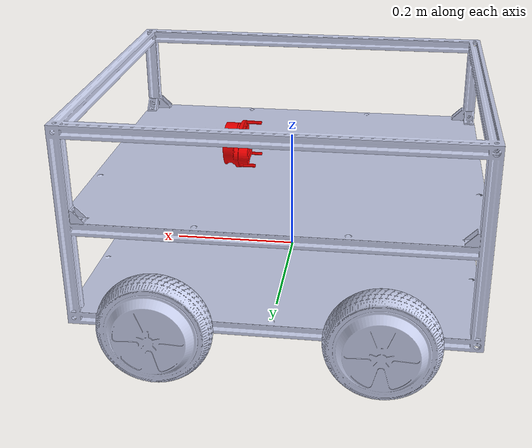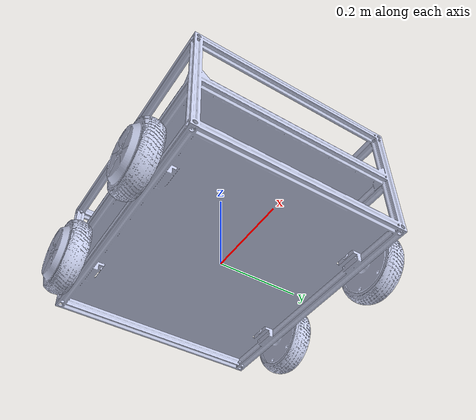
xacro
<?xml version="1.0" encoding="utf-8"?>
<robot name="robot" xmlns:xacro="http://www.ros.org/wiki/xacro">

  <xacro:include filename="$(find robot_description)/urdf/robot.gazebo"/>

  <link name="base_footprint"/>

  <joint name="base_footprint_joint" type="fixed">
      <origin xyz="0 0 0.0" rpy="0 0 0" />
      <parent link="base_footprint"/>
      <child link="base_link"/>
  </joint>

  <link
    name="base_link">
    <inertial>
      <origin
        xyz="-7.4564E-15 0.10853 3.29E-15"
        rpy="0 0 0" />
      <mass
        value="2.1858" />
      <inertia
        ixx="0.024469"
        ixy="-8.8109E-21"
        ixz="-8.7776E-08"
        iyy="0.059691"
        iyz="1.428E-19"
        izz="0.037861" />
    </inertial>
    <visual>
      <origin
        xyz="0 0 0"
        rpy="0 0 0" />
      <geometry>
        <mesh
          filename="package://robot_description/meshes/base_link.STL" />
      </geometry>
      <material
        name="">
        <color
          rgba="0.79216 0.81961 0.93333 1" />
      </material>
    </visual>
    <collision>
      <origin
        xyz="0 0 0"
        rpy="0 0 0" />
      <geometry>
        <mesh
          filename="package://robot_description/meshes/base_link.STL" />
      </geometry>
    </collision>
  </link>
  <link
    name="Front_Right_Wheel_Link">
    <inertial>
      <origin
        xyz="1.8999E-08 -1.8318E-09 0.033574"
        rpy="0 0 0" />
      <mass
        value="0.65022" />
      <inertia
        ixx="0.0015508"
        ixy="-4.122E-10"
        ixz="1.5315E-10"
        iyy="0.0015508"
        iyz="-2.4014E-11"
        izz="0.0029007" />
    </inertial>
    <visual>
      <origin
        xyz="0 0 0"
        rpy="0 0 0" />
      <geometry>
        <mesh
          filename="package://robot_description/meshes/Front_Right_Wheel_Link.STL" />
      </geometry>
      <material
        name="">
        <color
          rgba="0.79216 0.81961 0.93333 1" />
      </material>
    </visual>
    <collision>
      <origin
        xyz="0 0 0"
        rpy="0 0 0" />
      <geometry>
        <mesh
          filename="package://robot_description/meshes/Front_Right_Wheel_Link.STL" />
      </geometry>
    </collision>
  </link>
  <joint
    name="Front_Right_Wheel_Joint"
    type="continuous">
    <origin
      xyz="0.165 -0.3307 0.005"
      rpy="-1.5708 0 0" />
    <parent
      link="base_link" />
    <child
      link="Front_Right_Wheel_Link" />
    <axis
      xyz="0 0 1" />
  </joint>
  <link
    name="Front_Left_Wheel_Link">
    <inertial>
      <origin
        xyz="1.8953E-08 0.0017256 -1.8336E-09"
        rpy="0 0 0" />
      <mass
        value="0.65022" />
      <inertia
        ixx="0.0015508"
        ixy="-1.5342E-10"
        ixz="-4.1213E-10"
        iyy="0.0029007"
        iyz="2.3977E-11"
        izz="0.0015508" />
    </inertial>
    <visual>
      <origin
        xyz="0 0 0"
        rpy="0 0 0" />
      <geometry>
        <mesh
          filename="package://robot_description/meshes/Front_Left_Wheel_Link.STL" />
      </geometry>
      <material
        name="">
        <color
          rgba="0.79216 0.81961 0.93333 1" />
      </material>
    </visual>
    <collision>
      <origin
        xyz="0 0 0"
        rpy="0 0 0" />
      <geometry>
        <mesh
          filename="package://robot_description/meshes/Front_Left_Wheel_Link.STL" />
      </geometry>
    </collision>
  </link>
  <joint
    name="Front_Left_Wheel_Joint"
    type="continuous">
    <origin
      xyz="0.165 0.2954 0.005"
      rpy="-3.1416 0 -3.1416" />
    <parent
      link="base_link" />
    <child
      link="Front_Left_Wheel_Link" />
    <axis
      xyz="0 1 0" />
  </joint>
  <link
    name="Back_Right_Wheel_Link">
    <inertial>
      <origin
        xyz="1.8947E-08 0.0017256 -1.8342E-09"
        rpy="0 0 0" />
      <mass
        value="0.65022" />
      <inertia
        ixx="0.0015508"
        ixy="-1.5347E-10"
        ixz="-4.121E-10"
        iyy="0.0029007"
        iyz="2.397E-11"
        izz="0.0015508" />
    </inertial>
    <visual>
      <origin
        xyz="0 0 0"
        rpy="0 0 0" />
      <geometry>
        <mesh
          filename="package://robot_description/meshes/Back_Right_Wheel_Link.STL" />
      </geometry>
      <material
        name="">
        <color
          rgba="0.79216 0.81961 0.93333 1" />
      </material>
    </visual>
    <collision>
      <origin
        xyz="0 0 0"
        rpy="0 0 0" />
      <geometry>
        <mesh
          filename="package://robot_description/meshes/Back_Right_Wheel_Link.STL" />
      </geometry>
    </collision>
  </link>
  <joint
    name="Back_Right_Wheel_Joint"
    type="continuous">
    <origin
      xyz="-0.165 -0.2954 0.005"
      rpy="3.1416 0 0" />
    <parent
      link="base_link" />
    <child
      link="Back_Right_Wheel_Link" />
    <axis
      xyz="0 -1 0" />
  </joint>
  <link
    name="Back_Left_Wheel_Link">
    <inertial>
      <origin
        xyz="1.9016E-08 -1.83E-09 0.033574"
        rpy="0 0 0" />
      <mass
        value="0.65022" />
      <inertia
        ixx="0.0015508"
        ixy="-4.1228E-10"
        ixz="1.5298E-10"
        iyy="0.0015508"
        iyz="-2.4028E-11"
        izz="0.0029007" />
    </inertial>
    <visual>
      <origin
        xyz="0 0 0"
        rpy="0 0 0" />
      <geometry>
        <mesh
          filename="package://robot_description/meshes/Back_Left_Wheel_Link.STL" />
      </geometry>
      <material
        name="">
        <color
          rgba="0.79216 0.81961 0.93333 1" />
      </material>
    </visual>
    <collision>
      <origin
        xyz="0 0 0"
        rpy="0 0 0" />
      <geometry>
        <mesh
          filename="package://robot_description/meshes/Back_Left_Wheel_Link.STL" />
      </geometry>
    </collision>
  </link>
  <joint
    name="Back_Left_Wheel_Joint"
    type="continuous">
    <origin
      xyz="-0.165 0.3307 0.005"
      rpy="-1.5708 0 3.1416" />
    <parent
      link="base_link" />
    <child
      link="Back_Left_Wheel_Link" />
    <axis
      xyz="0 0 -1" />
  </joint>

    <link name="lidar_link">
        <inertial>
            <origin xyz="0.0 0.0 0.0" rpy="0.0 0.0 0.0"/>
            <mass value="0.1"/>
            <inertia ixx="0.0" ixy="0.0" ixz="0.0" iyy="0.0" iyz="0.0" izz="0.0"/>
        </inertial>
        <visual name="lidar_link_visual">
            <origin xyz="0.0 0.0 0.0" rpy="0.0 0.0 0.0"/>
            <geometry>
                <mesh filename="package://robot_description/meshes/lidar_link.STL"/>
            </geometry>
            <material name="">
                <color rgba="1.0 0.0 0.0 1.0"/>
                <texture filename=""/>
            </material>
        </visual>
        <collision>
            <origin xyz="0.0 0.0 0.0" rpy="0.0 0.0 0.0"/>
            <geometry>
                <box size="0.1 0.1 0.1"/>
            </geometry>
        </collision>
    </link>

    <joint name="lidar_joint" type="fixed">
        <origin xyz="0.11 0.0 0.18" rpy="1.5708 0.0 1.5708"/>
        <parent link="base_link"/>
        <child link="lidar_link"/>
    </joint>

   <link name="laser">

    </link>

    <joint name="laser_data_joint" type="fixed">
        <origin xyz="0.0 0.0 0.0" rpy="0.0 -1.5708 -1.5708"/>
        <parent link="lidar_link"/>
        <child link="laser"/>
    </joint>

    <link name="imu_link">
        <collision>
        <origin xyz="0 0 0.1" rpy="0 0 0"/>
        <geometry>
            <box size="0.02 0.02 0.02"/>
        </geometry>
        </collision>

        <visual>
        <origin xyz="0 0 0.1" rpy="0 0 0"/>
        <geometry>
            <box size="0.02 0.02 0.02"/>
        </geometry>
        <material name="orange"/>
        </visual>

        <inertial>
        <origin xyz="0 0 1" rpy="0 0 0"/>
        <mass value="1"/>
        <inertia
            ixx="1.0" ixy="0.0" ixz="0.0"
            iyy="1.0" iyz="0.0"
            izz="1.0"/>
        </inertial>
    </link>
    <joint name="imu_joint" type="fixed">
        <origin xyz="0.0 0.0 -0.09" rpy="0.0 0.0 0.0"/>
        <parent link="base_link"/>
        <child link="imu_link"/>
    </joint>

</robot>
